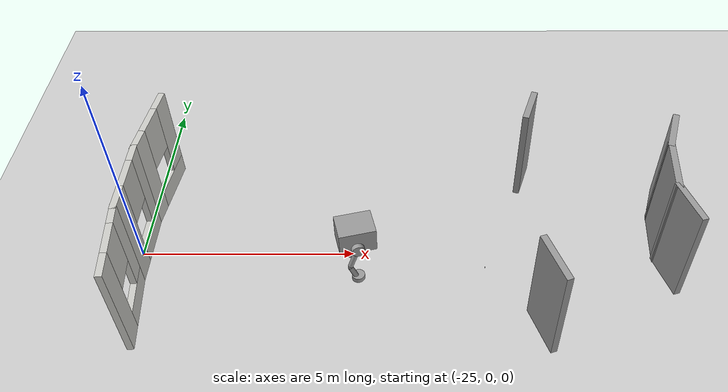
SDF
<sdf version="1.7">
 <world name="default">
  <model name="ground_plane">
   <static>1</static>
   <link name="link">
    <collision name="collision">
     <geometry><plane><normal>0 0 1</normal><size>100 100</size></plane></geometry>
     <surface>
      <contact><collide_bitmask>65535</collide_bitmask></contact>
      <friction><ode><mu>100</mu><mu2>50</mu2></ode></friction>
     </surface>
    </collision>
    <visual name="visual">
     <cast_shadows>0</cast_shadows>
     <geometry><plane><normal>0 0 1</normal><size>100 100</size></plane></geometry>
     <material>
      <script><uri>file://media/materials/scripts/gazebo.material</uri><name>Gazebo/Grey</name></script>
     </material>
    </visual>
   </link>
  </model>
  <model name="model">
   <pose>-4.1341 -0.05921 0 0 -0 0</pose>
   <link name="Wall_142">
    <collision name="Wall_142_Collision">
     <geometry><box><size>0.998979 0.15 2.5</size></box></geometry>
     <pose>0 0 1.25 0 -0 0</pose>
    </collision>
    <visual name="Wall_142_Visual">
     <pose>0 0 1.25 0 -0 0</pose>
     <geometry><box><size>0.998979 0.15 2.5</size></box></geometry>
     <material>
      <script><uri>file://media/materials/scripts/gazebo.material</uri><name>Gazebo/Grey</name></script>
      <ambient>0.929412 0.960784 0.933333 1</ambient>
     </material>
     <meta><layer>0</layer></meta>
    </visual>
    <pose>-11.6661 2.57769 0 0 -0 -1.88762</pose>
   </link>
   <link name="Wall_144">
    <collision name="Wall_144_Collision">
     <geometry><box><size>1.19979 0.15 2.5</size></box></geometry>
     <pose>0 0 1.25 0 -0 0</pose>
    </collision>
    <visual name="Wall_144_Visual">
     <pose>0 0 1.25 0 -0 0</pose>
     <geometry><box><size>1.19979 0.15 2.5</size></box></geometry>
     <material>
      <script><uri>file://media/materials/scripts/gazebo.material</uri><name>Gazebo/Grey</name></script>
      <ambient>0.929412 0.960784 0.933333 1</ambient>
     </material>
     <meta><layer>0</layer></meta>
    </visual>
    <pose>-11.6485 -2.13121 0 0 -0 -1.23709</pose>
   </link>
   <link name="Wall_326">
    <collision name="Wall_326_Collision">
     <geometry><box><size>1.12919 0.15 2.5</size></box></geometry>
     <pose>0 0 1.25 0 -0 0</pose>
    </collision>
    <visual name="Wall_326_Visual">
     <pose>0 0 1.25 0 -0 0</pose>
     <geometry><box><size>1.12919 0.15 2.5</size></box></geometry>
     <material>
      <script><uri>file://media/materials/scripts/gazebo.material</uri><name>Gazebo/Grey</name></script>
      <ambient>1 1 1 1</ambient>
     </material>
     <meta><layer>0</layer></meta>
    </visual>
    <pose>-8.61293 -0.596208 0 0 -0 1.85837</pose>
   </link>
   <link name="Wall_327">
    <collision name="Wall_327_Collision">
     <geometry><box><size>1.4791 0.15 2.5</size></box></geometry>
     <pose>0 0 1.25 0 -0 0</pose>
    </collision>
    <visual name="Wall_327_Visual">
     <pose>0 0 1.25 0 -0 0</pose>
     <geometry><box><size>1.4791 0.15 2.5</size></box></geometry>
     <material>
      <script><uri>file://media/materials/scripts/gazebo.material</uri><name>Gazebo/Grey</name></script>
      <ambient>1 1 1 1</ambient>
     </material>
     <meta><layer>0</layer></meta>
    </visual>
    <pose>-8.68567 0.53453 0 0 -0 1.47113</pose>
   </link>
   <link name="Wall_329">
    <collision name="Wall_329_Collision">
     <geometry><box><size>1.14137 0.15 2.5</size></box></geometry>
     <pose>0 0 1.25 0 -0 0</pose>
    </collision>
    <visual name="Wall_329_Visual">
     <pose>0 0 1.25 0 -0 0</pose>
     <geometry><box><size>1.14137 0.15 2.5</size></box></geometry>
     <material>
      <script><uri>file://media/materials/scripts/gazebo.material</uri><name>Gazebo/Grey</name></script>
      <ambient>1 1 1 1</ambient>
     </material>
     <meta><layer>0</layer></meta>
    </visual>
    <pose>-8.46123 1.6655 0 0 -0 1.2457</pose>
   </link>
   <link name="Wall_88">
    <pose>-20.6401 -1.63694 0 0 -0 1.67453</pose>
    <visual name="Wall_88_Visual_0">
     <pose>-0.680255 0 1.25 0 -0 0</pose>
     <geometry><box><size>0.608646 0.15 2.5</size></box></geometry>
     <material>
      <script><uri>file://media/materials/scripts/gazebo.material</uri><name>Gazebo/CeilingTiled</name></script>
      <ambient>0 0.423529 0.960784 1</ambient>
     </material>
     <meta><layer>0</layer></meta>
    </visual>
    <collision name="Wall_88_Collision_0">
     <geometry><box><size>0.608646 0.15 2.5</size></box></geometry>
     <pose>-0.680255 0 1.25 0 -0 0</pose>
    </collision>
    <visual name="Wall_88_Visual_1">
     <pose>0.304323 0 0.25 0 -0 0</pose>
     <geometry><box><size>1.36051 0.15 0.5</size></box></geometry>
     <material>
      <script><uri>file://media/materials/scripts/gazebo.material</uri><name>Gazebo/CeilingTiled</name></script>
      <ambient>0 0.423529 0.960784 1</ambient>
     </material>
     <meta><layer>0</layer></meta>
    </visual>
    <collision name="Wall_88_Collision_1">
     <geometry><box><size>1.36051 0.15 0.5</size></box></geometry>
     <pose>0.304323 0 0.25 0 -0 0</pose>
    </collision>
    <visual name="Wall_88_Visual_2">
     <pose>0.704323 0 1.5 0 -0 0</pose>
     <geometry><box><size>0.560511 0.15 2</size></box></geometry>
     <material>
      <script><uri>file://media/materials/scripts/gazebo.material</uri><name>Gazebo/CeilingTiled</name></script>
      <ambient>0 0.423529 0.960784 1</ambient>
     </material>
     <meta><layer>0</layer></meta>
    </visual>
    <collision name="Wall_88_Collision_2">
     <geometry><box><size>0.560511 0.15 2</size></box></geometry>
     <pose>0.704323 0 1.5 0 -0 0</pose>
    </collision>
    <visual name="Wall_88_Visual_3">
     <pose>0.024068 0 1.9 0 -0 0</pose>
     <geometry><box><size>0.8 0.15 1.2</size></box></geometry>
     <material>
      <script><uri>file://media/materials/scripts/gazebo.material</uri><name>Gazebo/CeilingTiled</name></script>
      <ambient>0 0.423529 0.960784 1</ambient>
     </material>
     <meta><layer>0</layer></meta>
    </visual>
    <collision name="Wall_88_Collision_3">
     <geometry><box><size>0.8 0.15 1.2</size></box></geometry>
     <pose>0.024068 0 1.9 0 -0 0</pose>
    </collision>
   </link>
   <link name="Wall_89">
    <pose>-20.7409 0.186888 0 0 -0 1.57799</pose>
    <visual name="Wall_89_Visual_0">
     <pose>-0.657941 0 1.25 0 -0 0</pose>
     <geometry><box><size>0.672441 0.15 2.5</size></box></geometry>
     <material>
      <script><uri>file://media/materials/scripts/gazebo.material</uri><name>Gazebo/CeilingTiled</name></script>
      <ambient>0 0.423529 0.960784 1</ambient>
     </material>
     <meta><layer>0</layer></meta>
    </visual>
    <collision name="Wall_89_Collision_0">
     <geometry><box><size>0.672441 0.15 2.5</size></box></geometry>
     <pose>-0.657941 0 1.25 0 -0 0</pose>
    </collision>
    <visual name="Wall_89_Visual_1">
     <pose>0.33622 0 0.25 0 -0 0</pose>
     <geometry><box><size>1.31588 0.15 0.5</size></box></geometry>
     <material>
      <script><uri>file://media/materials/scripts/gazebo.material</uri><name>Gazebo/CeilingTiled</name></script>
      <ambient>0 0.423529 0.960784 1</ambient>
     </material>
     <meta><layer>0</layer></meta>
    </visual>
    <collision name="Wall_89_Collision_1">
     <geometry><box><size>1.31588 0.15 0.5</size></box></geometry>
     <pose>0.33622 0 0.25 0 -0 0</pose>
    </collision>
    <visual name="Wall_89_Visual_2">
     <pose>0.73622 0 1.5 0 -0 0</pose>
     <geometry><box><size>0.515882 0.15 2</size></box></geometry>
     <material>
      <script><uri>file://media/materials/scripts/gazebo.material</uri><name>Gazebo/CeilingTiled</name></script>
      <ambient>0 0.423529 0.960784 1</ambient>
     </material>
     <meta><layer>0</layer></meta>
    </visual>
    <collision name="Wall_89_Collision_2">
     <geometry><box><size>0.515882 0.15 2</size></box></geometry>
     <pose>0.73622 0 1.5 0 -0 0</pose>
    </collision>
    <visual name="Wall_89_Visual_3">
     <pose>0.07828 0 1.9 0 -0 0</pose>
     <geometry><box><size>0.8 0.15 1.2</size></box></geometry>
     <material>
      <script><uri>file://media/materials/scripts/gazebo.material</uri><name>Gazebo/CeilingTiled</name></script>
      <ambient>0 0.423529 0.960784 1</ambient>
     </material>
     <meta><layer>0</layer></meta>
    </visual>
    <collision name="Wall_89_Collision_3">
     <geometry><box><size>0.8 0.15 1.2</size></box></geometry>
     <pose>0.07828 0 1.9 0 -0 0</pose>
    </collision>
   </link>
   <link name="Wall_91">
    <pose>-20.6398 2.0286 0 0 -0 1.45455</pose>
    <visual name="Wall_91_Visual_0">
     <pose>-0.693534 0 1.25 0 -0 0</pose>
     <geometry><box><size>0.620627 0.15 2.5</size></box></geometry>
     <material>
      <script><uri>file://media/materials/scripts/gazebo.material</uri><name>Gazebo/CeilingTiled</name></script>
      <ambient>0 0.423529 0.960784 1</ambient>
     </material>
     <meta><layer>0</layer></meta>
    </visual>
    <collision name="Wall_91_Collision_0">
     <geometry><box><size>0.620627 0.15 2.5</size></box></geometry>
     <pose>-0.693534 0 1.25 0 -0 0</pose>
    </collision>
    <visual name="Wall_91_Visual_1">
     <pose>0.310313 0 0.25 0 -0 0</pose>
     <geometry><box><size>1.38707 0.15 0.5</size></box></geometry>
     <material>
      <script><uri>file://media/materials/scripts/gazebo.material</uri><name>Gazebo/CeilingTiled</name></script>
      <ambient>0 0.423529 0.960784 1</ambient>
     </material>
     <meta><layer>0</layer></meta>
    </visual>
    <collision name="Wall_91_Collision_1">
     <geometry><box><size>1.38707 0.15 0.5</size></box></geometry>
     <pose>0.310313 0 0.25 0 -0 0</pose>
    </collision>
    <visual name="Wall_91_Visual_2">
     <pose>0.710313 0 1.5 0 -0 0</pose>
     <geometry><box><size>0.587068 0.15 2</size></box></geometry>
     <material>
      <script><uri>file://media/materials/scripts/gazebo.material</uri><name>Gazebo/CeilingTiled</name></script>
      <ambient>0 0.423529 0.960784 1</ambient>
     </material>
     <meta><layer>0</layer></meta>
    </visual>
    <collision name="Wall_91_Collision_2">
     <geometry><box><size>0.587068 0.15 2</size></box></geometry>
     <pose>0.710313 0 1.5 0 -0 0</pose>
    </collision>
    <visual name="Wall_91_Visual_3">
     <pose>0.01678 0 1.9 0 -0 0</pose>
     <geometry><box><size>0.8 0.15 1.2</size></box></geometry>
     <material>
      <script><uri>file://media/materials/scripts/gazebo.material</uri><name>Gazebo/CeilingTiled</name></script>
      <ambient>0 0.423529 0.960784 1</ambient>
     </material>
     <meta><layer>0</layer></meta>
    </visual>
    <collision name="Wall_91_Collision_3">
     <geometry><box><size>0.8 0.15 1.2</size></box></geometry>
     <pose>0.01678 0 1.9 0 -0 0</pose>
    </collision>
   </link>
   <static>1</static>
  </model>
  <model name="model_0">
   <link name="link_0_clone">
    <inertial>
     <mass>1</mass>
     <inertia><ixx>0.145833</ixx><ixy>0</ixy><ixz>0</ixz><iyy>0.145833</iyy><iyz>0</iyz><izz>0.125</izz></inertia>
    </inertial>
    <pose>-1.70371 0.05719 0.046277 0 -0 0</pose>
    <visual name="visual">
     <geometry><cylinder><radius>0.15</radius><length>0.12</length></cylinder></geometry>
     <material>
      <lighting>1</lighting>
      <script><uri>file://media/materials/scripts/gazebo.material</uri><name>Gazebo/Grey</name></script>
      <shader type="pixel"><normal_map>__default__</normal_map></shader>
      <ambient>0.3 0.3 0.3 1</ambient>
      <diffuse>0.7 0.7 0.7 1</diffuse>
      <specular>0.01 0.01 0.01 1</specular>
      <emissive>0 0 0 1</emissive>
     </material>
    </visual>
    <collision name="collision">
     <geometry><cylinder><radius>0.15</radius><length>0.12</length></cylinder></geometry>
     <surface>
      <friction>
       <ode><mu>1</mu><mu2>1</mu2><fdir1>0 0 0</fdir1><slip1>0</slip1><slip2>0</slip2></ode>
       <torsional>
        <coefficient>1</coefficient>
        <patch_radius>0</patch_radius>
        <surface_radius>0</surface_radius>
        <use_patch_radius>1</use_patch_radius>
        <ode><slip>0</slip></ode>
       </torsional>
      </friction>
      <bounce><restitution_coefficient>0</restitution_coefficient><threshold>1e+06</threshold></bounce>
      <contact>
       <collide_without_contact>0</collide_without_contact>
       <collide_without_contact_bitmask>1</collide_without_contact_bitmask>
       <collide_bitmask>1</collide_bitmask>
       <ode>
        <soft_cfm>0</soft_cfm>
        <soft_erp>0.2</soft_erp>
        <kp>1e+13</kp>
        <kd>1</kd>
        <max_vel>0.01</max_vel>
        <min_depth>0</min_depth>
       </ode>
       <bullet>
        <split_impulse>1</split_impulse>
        <split_impulse_penetration_threshold>-0.01</split_impulse_penetration_threshold>
        <soft_cfm>0</soft_cfm>
        <soft_erp>0.2</soft_erp>
        <kp>1e+13</kp>
        <kd>1</kd>
       </bullet>
      </contact>
     </surface>
    </collision>
   </link>
   <link name="link_0_clone_clone">
    <inertial>
     <mass>1</mass>
     <inertia><ixx>0.145833</ixx><ixy>0</ixy><ixz>0</ixz><iyy>0.145833</iyy><iyz>0</iyz><izz>0.125</izz></inertia>
    </inertial>
    <pose>-1.70371 -0.715173 0.046277 0 -0 0</pose>
    <visual name="visual">
     <geometry><cylinder><radius>0.15</radius><length>0.12</length></cylinder></geometry>
     <material>
      <lighting>1</lighting>
      <script><uri>file://media/materials/scripts/gazebo.material</uri><name>Gazebo/Grey</name></script>
      <shader type="pixel"><normal_map>__default__</normal_map></shader>
      <ambient>0.3 0.3 0.3 1</ambient>
      <diffuse>0.7 0.7 0.7 1</diffuse>
      <specular>0.01 0.01 0.01 1</specular>
      <emissive>0 0 0 1</emissive>
     </material>
    </visual>
    <collision name="collision">
     <geometry><cylinder><radius>0.15</radius><length>0.12</length></cylinder></geometry>
     <surface>
      <friction>
       <ode><mu>1</mu><mu2>1</mu2><fdir1>0 0 0</fdir1><slip1>0</slip1><slip2>0</slip2></ode>
       <torsional>
        <coefficient>1</coefficient>
        <patch_radius>0</patch_radius>
        <surface_radius>0</surface_radius>
        <use_patch_radius>1</use_patch_radius>
        <ode><slip>0</slip></ode>
       </torsional>
      </friction>
      <bounce><restitution_coefficient>0</restitution_coefficient><threshold>1e+06</threshold></bounce>
      <contact>
       <collide_without_contact>0</collide_without_contact>
       <collide_without_contact_bitmask>1</collide_without_contact_bitmask>
       <collide_bitmask>1</collide_bitmask>
       <ode>
        <soft_cfm>0</soft_cfm>
        <soft_erp>0.2</soft_erp>
        <kp>1e+13</kp>
        <kd>1</kd>
        <max_vel>0.01</max_vel>
        <min_depth>0</min_depth>
       </ode>
       <bullet>
        <split_impulse>1</split_impulse>
        <split_impulse_penetration_threshold>-0.01</split_impulse_penetration_threshold>
        <soft_cfm>0</soft_cfm>
        <soft_erp>0.2</soft_erp>
        <kp>1e+13</kp>
        <kd>1</kd>
       </bullet>
      </contact>
     </surface>
    </collision>
   </link>
   <link name="link_1_clone_0">
    <inertial>
     <mass>1</mass>
     <inertia><ixx>0.145833</ixx><ixy>0</ixy><ixz>0</ixz><iyy>0.145833</iyy><iyz>0</iyz><izz>0.125</izz></inertia>
    </inertial>
    <pose>-1.79935 -0.715173 0.645744 0 -0 0</pose>
    <visual name="visual">
     <pose>0 0 0 0 0.35 0</pose>
     <geometry><cylinder><radius>0.06</radius><length>0.4</length></cylinder></geometry>
     <material>
      <lighting>1</lighting>
      <script><uri>file://media/materials/scripts/gazebo.material</uri><name>Gazebo/Grey</name></script>
      <shader type="pixel"><normal_map>__default__</normal_map></shader>
      <ambient>0.3 0.3 0.3 1</ambient>
      <diffuse>0.7 0.7 0.7 1</diffuse>
      <specular>0.01 0.01 0.01 1</specular>
      <emissive>0 0 0 1</emissive>
     </material>
    </visual>
    <collision name="collision">
     <pose>0 0 0 0 0.35 0</pose>
     <geometry><cylinder><radius>0.06</radius><length>0.4</length></cylinder></geometry>
     <surface>
      <friction>
       <ode><mu>1</mu><mu2>1</mu2><fdir1>0 0 0</fdir1><slip1>0</slip1><slip2>0</slip2></ode>
       <torsional>
        <coefficient>1</coefficient>
        <patch_radius>0</patch_radius>
        <surface_radius>0</surface_radius>
        <use_patch_radius>1</use_patch_radius>
        <ode><slip>0</slip></ode>
       </torsional>
      </friction>
      <bounce><restitution_coefficient>0</restitution_coefficient><threshold>1e+06</threshold></bounce>
      <contact>
       <collide_without_contact>0</collide_without_contact>
       <collide_without_contact_bitmask>1</collide_without_contact_bitmask>
       <collide_bitmask>1</collide_bitmask>
       <ode>
        <soft_cfm>0</soft_cfm>
        <soft_erp>0.2</soft_erp>
        <kp>1e+13</kp>
        <kd>1</kd>
        <max_vel>0.01</max_vel>
        <min_depth>0</min_depth>
       </ode>
       <bullet>
        <split_impulse>1</split_impulse>
        <split_impulse_penetration_threshold>-0.01</split_impulse_penetration_threshold>
        <soft_cfm>0</soft_cfm>
        <soft_erp>0.2</soft_erp>
        <kp>1e+13</kp>
        <kd>1</kd>
       </bullet>
      </contact>
     </surface>
    </collision>
   </link>
   <link name="link_1_clone_0_clone">
    <inertial>
     <mass>1</mass>
     <inertia><ixx>0.145833</ixx><ixy>0</ixy><ixz>0</ixz><iyy>0.145833</iyy><iyz>0</iyz><izz>0.125</izz></inertia>
    </inertial>
    <pose>-1.8087 -0.714544 0.232355 0 -0 0</pose>
    <visual name="visual">
     <pose>0 0 0 0 -0.35 0</pose>
     <geometry><cylinder><radius>0.06</radius><length>0.4</length></cylinder></geometry>
     <material>
      <lighting>1</lighting>
      <script><uri>file://media/materials/scripts/gazebo.material</uri><name>Gazebo/Grey</name></script>
      <shader type="pixel"><normal_map>__default__</normal_map></shader>
      <ambient>0.3 0.3 0.3 1</ambient>
      <diffuse>0.7 0.7 0.7 1</diffuse>
      <specular>0.01 0.01 0.01 1</specular>
      <emissive>0 0 0 1</emissive>
     </material>
    </visual>
    <collision name="collision">
     <pose>0 0 0 0 -0.35 0</pose>
     <geometry><cylinder><radius>0.06</radius><length>0.4</length></cylinder></geometry>
     <surface>
      <friction>
       <ode><mu>1</mu><mu2>1</mu2><fdir1>0 0 0</fdir1><slip1>0</slip1><slip2>0</slip2></ode>
       <torsional>
        <coefficient>1</coefficient>
        <patch_radius>0</patch_radius>
        <surface_radius>0</surface_radius>
        <use_patch_radius>1</use_patch_radius>
        <ode><slip>0</slip></ode>
       </torsional>
      </friction>
      <bounce><restitution_coefficient>0</restitution_coefficient><threshold>1e+06</threshold></bounce>
      <contact>
       <collide_without_contact>0</collide_without_contact>
       <collide_without_contact_bitmask>1</collide_without_contact_bitmask>
       <collide_bitmask>1</collide_bitmask>
       <ode>
        <soft_cfm>0</soft_cfm>
        <soft_erp>0.2</soft_erp>
        <kp>1e+13</kp>
        <kd>1</kd>
        <max_vel>0.01</max_vel>
        <min_depth>0</min_depth>
       </ode>
       <bullet>
        <split_impulse>1</split_impulse>
        <split_impulse_penetration_threshold>-0.01</split_impulse_penetration_threshold>
        <soft_cfm>0</soft_cfm>
        <soft_erp>0.2</soft_erp>
        <kp>1e+13</kp>
        <kd>1</kd>
       </bullet>
      </contact>
     </surface>
    </collision>
   </link>
   <link name="link_1_clone_0_clone_0">
    <inertial>
     <mass>1</mass>
     <inertia><ixx>0.145833</ixx><ixy>0</ixy><ixz>0</ixz><iyy>0.145833</iyy><iyz>0</iyz><izz>0.125</izz></inertia>
    </inertial>
    <pose>-1.79935 0.058729 0.645744 0 -0 0</pose>
    <visual name="visual">
     <pose>0 0 0 0 0.35 0</pose>
     <geometry><cylinder><radius>0.06</radius><length>0.4</length></cylinder></geometry>
     <material>
      <lighting>1</lighting>
      <script><uri>file://media/materials/scripts/gazebo.material</uri><name>Gazebo/Grey</name></script>
      <shader type="pixel"><normal_map>__default__</normal_map></shader>
      <ambient>0.3 0.3 0.3 1</ambient>
      <diffuse>0.7 0.7 0.7 1</diffuse>
      <specular>0.01 0.01 0.01 1</specular>
      <emissive>0 0 0 1</emissive>
     </material>
    </visual>
    <collision name="collision">
     <pose>0 0 0 0 0.35 0</pose>
     <geometry><cylinder><radius>0.06</radius><length>0.4</length></cylinder></geometry>
     <surface>
      <friction>
       <ode><mu>1</mu><mu2>1</mu2><fdir1>0 0 0</fdir1><slip1>0</slip1><slip2>0</slip2></ode>
       <torsional>
        <coefficient>1</coefficient>
        <patch_radius>0</patch_radius>
        <surface_radius>0</surface_radius>
        <use_patch_radius>1</use_patch_radius>
        <ode><slip>0</slip></ode>
       </torsional>
      </friction>
      <bounce><restitution_coefficient>0</restitution_coefficient><threshold>1e+06</threshold></bounce>
      <contact>
       <collide_without_contact>0</collide_without_contact>
       <collide_without_contact_bitmask>1</collide_without_contact_bitmask>
       <collide_bitmask>1</collide_bitmask>
       <ode>
        <soft_cfm>0</soft_cfm>
        <soft_erp>0.2</soft_erp>
        <kp>1e+13</kp>
        <kd>1</kd>
        <max_vel>0.01</max_vel>
        <min_depth>0</min_depth>
       </ode>
       <bullet>
        <split_impulse>1</split_impulse>
        <split_impulse_penetration_threshold>-0.01</split_impulse_penetration_threshold>
        <soft_cfm>0</soft_cfm>
        <soft_erp>0.2</soft_erp>
        <kp>1e+13</kp>
        <kd>1</kd>
       </bullet>
      </contact>
     </surface>
    </collision>
   </link>
   <link name="link_1_clone_0_clone_clone">
    <inertial>
     <mass>1</mass>
     <inertia><ixx>0.145833</ixx><ixy>0</ixy><ixz>0</ixz><iyy>0.145833</iyy><iyz>0</iyz><izz>0.125</izz></inertia>
    </inertial>
    <pose>-1.8087 0.057646 0.232355 0 -0 0</pose>
    <visual name="visual">
     <pose>0 0 0 0 -0.35 0</pose>
     <geometry><cylinder><radius>0.06</radius><length>0.4</length></cylinder></geometry>
     <material>
      <lighting>1</lighting>
      <script><uri>file://media/materials/scripts/gazebo.material</uri><name>Gazebo/Grey</name></script>
      <shader type="pixel"><normal_map>__default__</normal_map></shader>
      <ambient>0.3 0.3 0.3 1</ambient>
      <diffuse>0.7 0.7 0.7 1</diffuse>
      <specular>0.01 0.01 0.01 1</specular>
      <emissive>0 0 0 1</emissive>
     </material>
    </visual>
    <collision name="collision">
     <pose>0 0 0 0 -0.35 0</pose>
     <geometry><cylinder><radius>0.06</radius><length>0.4</length></cylinder></geometry>
     <surface>
      <friction>
       <ode><mu>1</mu><mu2>1</mu2><fdir1>0 0 0</fdir1><slip1>0</slip1><slip2>0</slip2></ode>
       <torsional>
        <coefficient>1</coefficient>
        <patch_radius>0</patch_radius>
        <surface_radius>0</surface_radius>
        <use_patch_radius>1</use_patch_radius>
        <ode><slip>0</slip></ode>
       </torsional>
      </friction>
      <bounce><restitution_coefficient>0</restitution_coefficient><threshold>1e+06</threshold></bounce>
      <contact>
       <collide_without_contact>0</collide_without_contact>
       <collide_without_contact_bitmask>1</collide_without_contact_bitmask>
       <collide_bitmask>1</collide_bitmask>
       <ode>
        <soft_cfm>0</soft_cfm>
        <soft_erp>0.2</soft_erp>
        <kp>1e+13</kp>
        <kd>1</kd>
        <max_vel>0.01</max_vel>
        <min_depth>0</min_depth>
       </ode>
       <bullet>
        <split_impulse>1</split_impulse>
        <split_impulse_penetration_threshold>-0.01</split_impulse_penetration_threshold>
        <soft_cfm>0</soft_cfm>
        <soft_erp>0.2</soft_erp>
        <kp>1e+13</kp>
        <kd>1</kd>
       </bullet>
      </contact>
     </surface>
    </collision>
   </link>
   <link name="link_2_clone">
    <inertial>
     <mass>1</mass>
     <inertia><ixx>0.145833</ixx><ixy>0</ixy><ixz>0</ixz><iyy>0.145833</iyy><iyz>0</iyz><izz>0.125</izz></inertia>
    </inertial>
    <pose>-1.66905 0.061405 0.956276 0 -0 0</pose>
    <visual name="visual">
     <pose>0 0 0 1.5708 -0 0</pose>
     <geometry><cylinder><radius>0.15</radius><length>0.12</length></cylinder></geometry>
     <material>
      <lighting>1</lighting>
      <script><uri>file://media/materials/scripts/gazebo.material</uri><name>Gazebo/Grey</name></script>
      <shader type="pixel"><normal_map>__default__</normal_map></shader>
      <ambient>0.3 0.3 0.3 1</ambient>
      <diffuse>0.7 0.7 0.7 1</diffuse>
      <specular>0.01 0.01 0.01 1</specular>
      <emissive>0 0 0 1</emissive>
     </material>
    </visual>
    <collision name="collision">
     <pose>0 0 0 1.5708 -0 0</pose>
     <geometry><cylinder><radius>0.15</radius><length>0.12</length></cylinder></geometry>
     <surface>
      <friction>
       <ode><mu>1</mu><mu2>1</mu2><fdir1>0 0 0</fdir1><slip1>0</slip1><slip2>0</slip2></ode>
       <torsional>
        <coefficient>1</coefficient>
        <patch_radius>0</patch_radius>
        <surface_radius>0</surface_radius>
        <use_patch_radius>1</use_patch_radius>
        <ode><slip>0</slip></ode>
       </torsional>
      </friction>
      <bounce><restitution_coefficient>0</restitution_coefficient><threshold>1e+06</threshold></bounce>
      <contact>
       <collide_without_contact>0</collide_without_contact>
       <collide_without_contact_bitmask>1</collide_without_contact_bitmask>
       <collide_bitmask>1</collide_bitmask>
       <ode>
        <soft_cfm>0</soft_cfm>
        <soft_erp>0.2</soft_erp>
        <kp>1e+13</kp>
        <kd>1</kd>
        <max_vel>0.01</max_vel>
        <min_depth>0</min_depth>
       </ode>
       <bullet>
        <split_impulse>1</split_impulse>
        <split_impulse_penetration_threshold>-0.01</split_impulse_penetration_threshold>
        <soft_cfm>0</soft_cfm>
        <soft_erp>0.2</soft_erp>
        <kp>1e+13</kp>
        <kd>1</kd>
       </bullet>
      </contact>
     </surface>
    </collision>
   </link>
   <link name="link_2_clone_0">
    <inertial>
     <mass>1</mass>
     <inertia><ixx>0.145833</ixx><ixy>0</ixy><ixz>0</ixz><iyy>0.145833</iyy><iyz>0</iyz><izz>0.125</izz></inertia>
    </inertial>
    <pose>-1.66905 -0.715172 0.956276 0 -0 0</pose>
    <visual name="visual">
     <pose>0 0 0 1.5708 -0 0</pose>
     <geometry><cylinder><radius>0.15</radius><length>0.12</length></cylinder></geometry>
     <material>
      <lighting>1</lighting>
      <script><uri>file://media/materials/scripts/gazebo.material</uri><name>Gazebo/Grey</name></script>
      <shader type="pixel"><normal_map>__default__</normal_map></shader>
      <ambient>0.3 0.3 0.3 1</ambient>
      <diffuse>0.7 0.7 0.7 1</diffuse>
      <specular>0.01 0.01 0.01 1</specular>
      <emissive>0 0 0 1</emissive>
     </material>
    </visual>
    <collision name="collision">
     <pose>0 0 0 1.5708 -0 0</pose>
     <geometry><cylinder><radius>0.15</radius><length>0.12</length></cylinder></geometry>
     <surface>
      <friction>
       <ode><mu>1</mu><mu2>1</mu2><fdir1>0 0 0</fdir1><slip1>0</slip1><slip2>0</slip2></ode>
       <torsional>
        <coefficient>1</coefficient>
        <patch_radius>0</patch_radius>
        <surface_radius>0</surface_radius>
        <use_patch_radius>1</use_patch_radius>
        <ode><slip>0</slip></ode>
       </torsional>
      </friction>
      <bounce><restitution_coefficient>0</restitution_coefficient><threshold>1e+06</threshold></bounce>
      <contact>
       <collide_without_contact>0</collide_without_contact>
       <collide_without_contact_bitmask>1</collide_without_contact_bitmask>
       <collide_bitmask>1</collide_bitmask>
       <ode>
        <soft_cfm>0</soft_cfm>
        <soft_erp>0.2</soft_erp>
        <kp>1e+13</kp>
        <kd>1</kd>
        <max_vel>0.01</max_vel>
        <min_depth>0</min_depth>
       </ode>
       <bullet>
        <split_impulse>1</split_impulse>
        <split_impulse_penetration_threshold>-0.01</split_impulse_penetration_threshold>
        <soft_cfm>0</soft_cfm>
        <soft_erp>0.2</soft_erp>
        <kp>1e+13</kp>
        <kd>1</kd>
       </bullet>
      </contact>
     </surface>
    </collision>
   </link>
   <link name="link_4">
    <inertial>
     <mass>1</mass>
     <inertia>
      <ixx>0.166667</ixx>
      <ixy>0</ixy>
      <ixz>0</ixz>
      <iyy>0.166667</iyy>
      <iyz>0</iyz>
      <izz>0.166667</izz>
     </inertia>
    </inertial>
    <pose>-1.65199 -0.327888 1.10628 0 -0 0</pose>
    <visual name="visual">
     <geometry><box><size>0.85 0.66 0.6</size></box></geometry>
     <material>
      <lighting>1</lighting>
      <script><uri>file://media/materials/scripts/gazebo.material</uri><name>Gazebo/Grey</name></script>
      <shader type="pixel"><normal_map>__default__</normal_map></shader>
      <ambient>0.3 0.3 0.3 1</ambient>
      <diffuse>0.7 0.7 0.7 1</diffuse>
      <specular>0.01 0.01 0.01 1</specular>
      <emissive>0 0 0 1</emissive>
     </material>
    </visual>
    <collision name="collision">
     <geometry><box><size>0.85 0.66 0.6</size></box></geometry>
     <surface>
      <friction>
       <ode><mu>1</mu><mu2>1</mu2><fdir1>0 0 0</fdir1><slip1>0</slip1><slip2>0</slip2></ode>
       <torsional>
        <coefficient>1</coefficient>
        <patch_radius>0</patch_radius>
        <surface_radius>0</surface_radius>
        <use_patch_radius>1</use_patch_radius>
        <ode><slip>0</slip></ode>
       </torsional>
      </friction>
      <bounce><restitution_coefficient>0</restitution_coefficient><threshold>1e+06</threshold></bounce>
      <contact>
       <collide_without_contact>0</collide_without_contact>
       <collide_without_contact_bitmask>1</collide_without_contact_bitmask>
       <collide_bitmask>1</collide_bitmask>
       <ode>
        <soft_cfm>0</soft_cfm>
        <soft_erp>0.2</soft_erp>
        <kp>1e+13</kp>
        <kd>1</kd>
        <max_vel>0.01</max_vel>
        <min_depth>0</min_depth>
       </ode>
       <bullet>
        <split_impulse>1</split_impulse>
        <split_impulse_penetration_threshold>-0.01</split_impulse_penetration_threshold>
        <soft_cfm>0</soft_cfm>
        <soft_erp>0.2</soft_erp>
        <kp>1e+13</kp>
        <kd>1</kd>
       </bullet>
      </contact>
     </surface>
    </collision>
   </link>
   <link name="link_5_clone">
    <inertial>
     <mass>1</mass>
     <inertia><ixx>0.1</ixx><ixy>0</ixy><ixz>0</ixz><iyy>0.1</iyy><iyz>0</iyz><izz>0.1</izz></inertia>
    </inertial>
    <pose>-1.87353 -0.71583 0.431128 0 -0 0</pose>
    <visual name="visual">
     <geometry><sphere><radius>0.06</radius></sphere></geometry>
     <material>
      <lighting>1</lighting>
      <script><uri>file://media/materials/scripts/gazebo.material</uri><name>Gazebo/Grey</name></script>
      <shader type="pixel"><normal_map>__default__</normal_map></shader>
      <ambient>0.3 0.3 0.3 1</ambient>
      <diffuse>0.7 0.7 0.7 1</diffuse>
      <specular>0.01 0.01 0.01 1</specular>
      <emissive>0 0 0 1</emissive>
     </material>
    </visual>
    <collision name="collision">
     <geometry><sphere><radius>0.06</radius></sphere></geometry>
     <surface>
      <friction>
       <ode><mu>1</mu><mu2>1</mu2><fdir1>0 0 0</fdir1><slip1>0</slip1><slip2>0</slip2></ode>
       <torsional>
        <coefficient>1</coefficient>
        <patch_radius>0</patch_radius>
        <surface_radius>0</surface_radius>
        <use_patch_radius>1</use_patch_radius>
        <ode><slip>0</slip></ode>
       </torsional>
      </friction>
      <bounce><restitution_coefficient>0</restitution_coefficient><threshold>1e+06</threshold></bounce>
      <contact>
       <collide_without_contact>0</collide_without_contact>
       <collide_without_contact_bitmask>1</collide_without_contact_bitmask>
       <collide_bitmask>1</collide_bitmask>
       <ode>
        <soft_cfm>0</soft_cfm>
        <soft_erp>0.2</soft_erp>
        <kp>1e+13</kp>
        <kd>1</kd>
        <max_vel>0.01</max_vel>
        <min_depth>0</min_depth>
       </ode>
       <bullet>
        <split_impulse>1</split_impulse>
        <split_impulse_penetration_threshold>-0.01</split_impulse_penetration_threshold>
        <soft_cfm>0</soft_cfm>
        <soft_erp>0.2</soft_erp>
        <kp>1e+13</kp>
        <kd>1</kd>
       </bullet>
      </contact>
     </surface>
    </collision>
   </link>
   <link name="link_5_clone_clone">
    <inertial>
     <mass>1</mass>
     <inertia><ixx>0.1</ixx><ixy>0</ixy><ixz>0</ixz><iyy>0.1</iyy><iyz>0</iyz><izz>0.1</izz></inertia>
    </inertial>
    <pose>-1.87353 0.059552 0.431128 0 -0 0</pose>
    <visual name="visual">
     <geometry><sphere><radius>0.06</radius></sphere></geometry>
     <material>
      <lighting>1</lighting>
      <script><uri>file://media/materials/scripts/gazebo.material</uri><name>Gazebo/Grey</name></script>
      <shader type="pixel"><normal_map>__default__</normal_map></shader>
      <ambient>0.3 0.3 0.3 1</ambient>
      <diffuse>0.7 0.7 0.7 1</diffuse>
      <specular>0.01 0.01 0.01 1</specular>
      <emissive>0 0 0 1</emissive>
     </material>
    </visual>
    <collision name="collision">
     <geometry><sphere><radius>0.06</radius></sphere></geometry>
     <surface>
      <friction>
       <ode><mu>1</mu><mu2>1</mu2><fdir1>0 0 0</fdir1><slip1>0</slip1><slip2>0</slip2></ode>
       <torsional>
        <coefficient>1</coefficient>
        <patch_radius>0</patch_radius>
        <surface_radius>0</surface_radius>
        <use_patch_radius>1</use_patch_radius>
        <ode><slip>0</slip></ode>
       </torsional>
      </friction>
      <bounce><restitution_coefficient>0</restitution_coefficient><threshold>1e+06</threshold></bounce>
      <contact>
       <collide_without_contact>0</collide_without_contact>
       <collide_without_contact_bitmask>1</collide_without_contact_bitmask>
       <collide_bitmask>1</collide_bitmask>
       <ode>
        <soft_cfm>0</soft_cfm>
        <soft_erp>0.2</soft_erp>
        <kp>1e+13</kp>
        <kd>1</kd>
        <max_vel>0.01</max_vel>
        <min_depth>0</min_depth>
       </ode>
       <bullet>
        <split_impulse>1</split_impulse>
        <split_impulse_penetration_threshold>-0.01</split_impulse_penetration_threshold>
        <soft_cfm>0</soft_cfm>
        <soft_erp>0.2</soft_erp>
        <kp>1e+13</kp>
        <kd>1</kd>
       </bullet>
      </contact>
     </surface>
    </collision>
   </link>
   <joint name="link_0_clone_JOINT_0" type="fixed">
    <parent>link_0_clone</parent>
    <child>link_1_clone_0_clone_clone</child>
    <physics>
     <ode><limit><cfm>0</cfm><erp>0.2</erp></limit><suspension><cfm>0</cfm><erp>0.2</erp></suspension></ode>
    </physics>
   </joint>
   <joint name="link_0_clone_clone_JOINT_5" type="fixed">
    <parent>link_0_clone_clone</parent>
    <child>link_1_clone_0_clone</child>
    <physics>
     <ode><limit><cfm>0</cfm><erp>0.2</erp></limit><suspension><cfm>0</cfm><erp>0.2</erp></suspension></ode>
    </physics>
   </joint>
   <joint name="link_1_clone_0_JOINT_7" type="fixed">
    <parent>link_1_clone_0</parent>
    <child>link_2_clone_0</child>
    <physics>
     <ode><limit><cfm>0</cfm><erp>0.2</erp></limit><suspension><cfm>0</cfm><erp>0.2</erp></suspension></ode>
    </physics>
   </joint>
   <joint name="link_1_clone_0_JOINT_8" type="fixed">
    <parent>link_1_clone_0</parent>
    <child>link_5_clone</child>
    <physics>
     <ode><limit><cfm>0</cfm><erp>0.2</erp></limit><suspension><cfm>0</cfm><erp>0.2</erp></suspension></ode>
    </physics>
   </joint>
   <joint name="link_1_clone_0_clone_0_JOINT_2" type="fixed">
    <parent>link_1_clone_0_clone_0</parent>
    <child>link_5_clone_clone</child>
    <physics>
     <ode><limit><cfm>0</cfm><erp>0.2</erp></limit><suspension><cfm>0</cfm><erp>0.2</erp></suspension></ode>
    </physics>
   </joint>
   <joint name="link_1_clone_0_clone_JOINT_6" type="fixed">
    <parent>link_1_clone_0_clone</parent>
    <child>link_5_clone</child>
    <physics>
     <ode><limit><cfm>0</cfm><erp>0.2</erp></limit><suspension><cfm>0</cfm><erp>0.2</erp></suspension></ode>
    </physics>
   </joint>
   <joint name="link_1_clone_0_clone_clone_JOINT_1" type="fixed">
    <parent>link_1_clone_0_clone_clone</parent>
    <child>link_5_clone_clone</child>
    <physics>
     <ode><limit><cfm>0</cfm><erp>0.2</erp></limit><suspension><cfm>0</cfm><erp>0.2</erp></suspension></ode>
    </physics>
   </joint>
   <joint name="link_2_clone_0_JOINT_9" type="revolute">
    <parent>link_2_clone_0</parent>
    <child>link_4</child>
    <axis>
     <xyz>-0 -1 -0</xyz>
     <limit>
      <lower>-1.79769e+308</lower>
      <upper>1.79769e+308</upper>
      <effort>-1</effort>
      <velocity>-1</velocity>
     </limit>
     <dynamics>
      <spring_reference>0</spring_reference>
      <spring_stiffness>0</spring_stiffness>
      <damping>0</damping>
     </dynamics>
    </axis>
    <physics>
     <ode><limit><cfm>0</cfm><erp>0.2</erp></limit><suspension><cfm>0</cfm><erp>0.2</erp></suspension></ode>
    </physics>
   </joint>
   <joint name="link_2_clone_JOINT_3" type="fixed">
    <parent>link_2_clone</parent>
    <child>link_1_clone_0_clone_0</child>
    <physics>
     <ode><limit><cfm>0</cfm><erp>0.2</erp></limit><suspension><cfm>0</cfm><erp>0.2</erp></suspension></ode>
    </physics>
   </joint>
   <joint name="link_2_clone_JOINT_4" type="revolute">
    <parent>link_2_clone</parent>
    <child>link_4</child>
    <axis>
     <xyz>0 1 0</xyz>
     <limit>
      <lower>-1.79769e+308</lower>
      <upper>1.79769e+308</upper>
      <effort>-1</effort>
      <velocity>-1</velocity>
     </limit>
     <dynamics>
      <spring_reference>0</spring_reference>
      <spring_stiffness>0</spring_stiffness>
      <damping>0</damping>
     </dynamics>
    </axis>
    <physics>
     <ode><limit><cfm>0</cfm><erp>0.2</erp></limit><suspension><cfm>0</cfm><erp>0.2</erp></suspension></ode>
    </physics>
   </joint>
   <static>0</static>
   <pose>-18.3798 0.401266 0.013724 2e-06 -5e-06 0.248963</pose>
  </model>
  <model name="metal_peg">
   <link name="link">
    <pose>0 0 0.031 0 -0 0</pose>
    <inertial>
     <mass>0.0121</mass>
     <inertia>
      <ixx>3.90898e-06</ixx>
      <ixy>0</ixy>
      <ixz>0</ixz>
      <iyy>3.90898e-06</iyy>
      <iyz>0</iyz>
      <izz>6.58845e-08</izz>
     </inertia>
    </inertial>
    <collision name="collision">
     <geometry><cylinder><radius>0.0033</radius><length>0.062</length></cylinder></geometry>
     <surface>
      <contact>
       <poissons_ratio>0.305</poissons_ratio>
       <elastic_modulus>2e+11</elastic_modulus>
       <ode><kp>100000</kp><kd>100</kd><max_vel>100</max_vel><min_depth>0.001</min_depth></ode>
      </contact>
      <friction>
       <torsional>
        <coefficient>1</coefficient>
        <use_patch_radius>0</use_patch_radius>
        <surface_radius>0.01</surface_radius>
       </torsional>
      </friction>
     </surface>
    </collision>
    <visual name="visual">
     <geometry><cylinder><radius>0.0033</radius><length>0.062</length></cylinder></geometry>
     <material>
      <script><uri>file://media/materials/scripts/gazebo.material</uri><name>Gazebo/Grey</name></script>
     </material>
    </visual>
   </link>
   <pose>-16.9111 -0.441404 -0.001 -5e-06 5e-06 -1e-06</pose>
  </model>
 </world>
</sdf>
